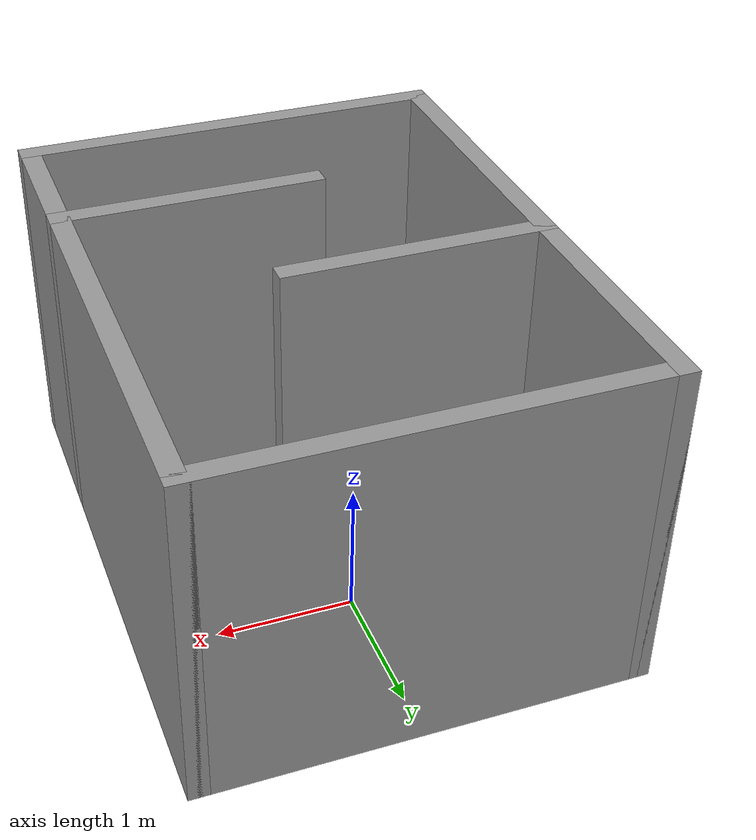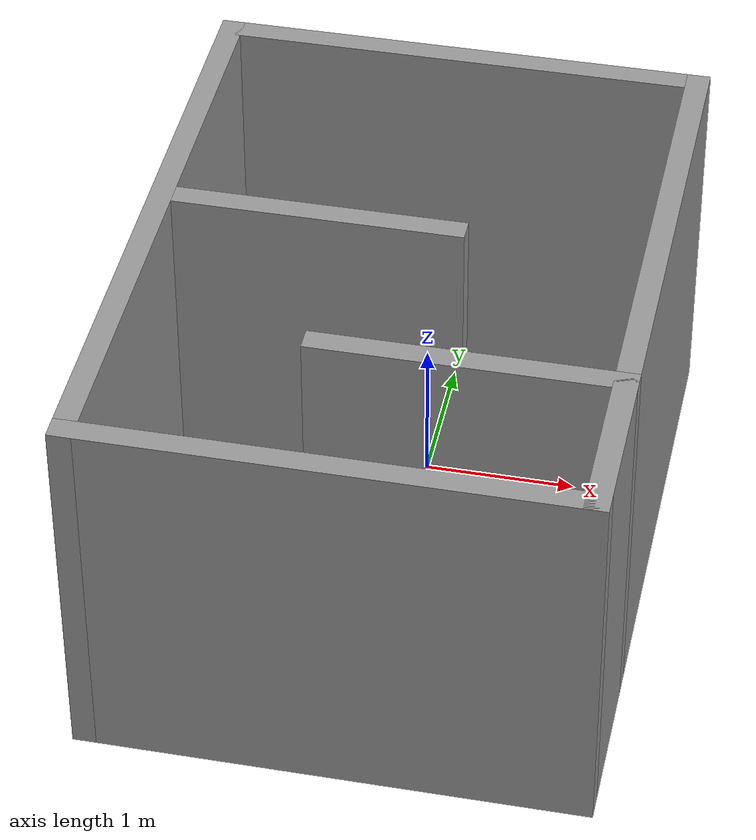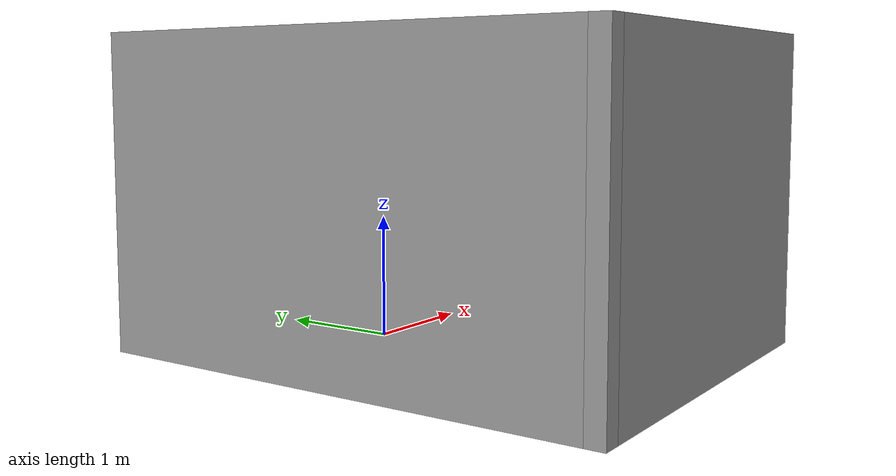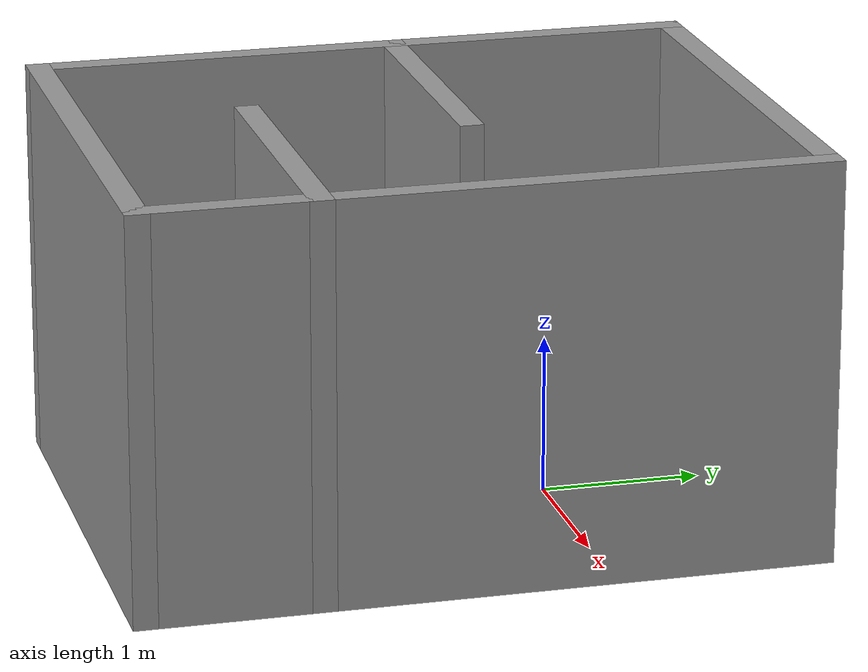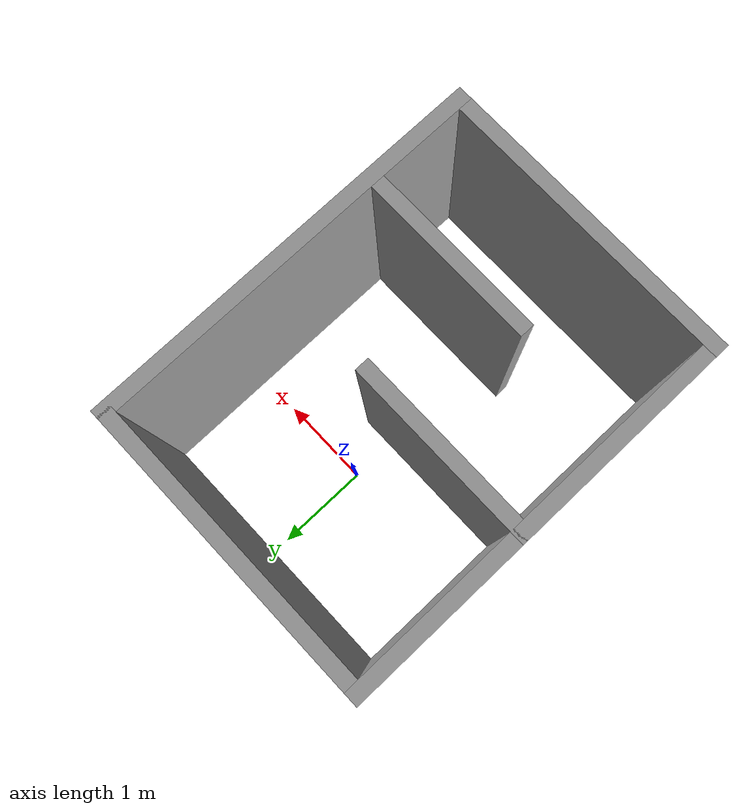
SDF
<?xml version='1.0'?>
<sdf version='1.7'>
  <model name='basic_world'>
    <pose>-0.03 -0.78 0 0 -0 0</pose>
    <link name='Wall_28'>
      <collision name='Wall_28_Collision'>
        <geometry>
          <box>
            <size>3.25 0.15 2.5</size>
          </box>
        </geometry>
        <pose>0 0 1.25 0 -0 0</pose>
      </collision>
      <visual name='Wall_28_Visual'>
        <pose>0 0 1.25 0 -0 0</pose>
        <geometry>
          <box>
            <size>3.25 0.15 2.5</size>
          </box>
        </geometry>
        <material>
          <script>
            <uri>file://media/materials/scripts/gazebo.material</uri>
            <name>Gazebo/Grey</name>
          </script>
          <ambient>1 1 1 1</ambient>
        </material>
        <meta>
          <layer>0</layer>
        </meta>
      </visual>
      <pose>0 2.05 0 0 -0 0</pose>
    </link>
    <link name='Wall_29'>
      <collision name='Wall_29_Collision'>
        <geometry>
          <box>
            <size>4.25 0.15 2.5</size>
          </box>
        </geometry>
        <pose>0 0 1.25 0 -0 0</pose>
      </collision>
      <visual name='Wall_29_Visual'>
        <pose>0 0 1.25 0 -0 0</pose>
        <geometry>
          <box>
            <size>4.25 0.15 2.5</size>
          </box>
        </geometry>
        <material>
          <script>
            <uri>file://media/materials/scripts/gazebo.material</uri>
            <name>Gazebo/Grey</name>
          </script>
          <ambient>1 1 1 1</ambient>
        </material>
        <meta>
          <layer>0</layer>
        </meta>
      </visual>
      <pose>1.55 0 0 0 -0 -1.5708</pose>
    </link>
    <link name='Wall_30'>
      <collision name='Wall_30_Collision'>
        <geometry>
          <box>
            <size>3.25 0.15 2.5</size>
          </box>
        </geometry>
        <pose>0 0 1.25 0 -0 0</pose>
      </collision>
      <visual name='Wall_30_Visual'>
        <pose>0 0 1.25 0 -0 0</pose>
        <geometry>
          <box>
            <size>3.25 0.15 2.5</size>
          </box>
        </geometry>
        <material>
          <script>
            <uri>file://media/materials/scripts/gazebo.material</uri>
            <name>Gazebo/Grey</name>
          </script>
          <ambient>1 1 1 1</ambient>
        </material>
        <meta>
          <layer>0</layer>
        </meta>
      </visual>
      <pose>0 -2.05 0 0 -0 3.14159</pose>
    </link>
    <link name='Wall_31'>
      <collision name='Wall_31_Collision'>
        <geometry>
          <box>
            <size>4.25 0.15 2.5</size>
          </box>
        </geometry>
        <pose>0 0 1.25 0 -0 0</pose>
      </collision>
      <visual name='Wall_31_Visual'>
        <pose>0 0 1.25 0 -0 0</pose>
        <geometry>
          <box>
            <size>4.25 0.15 2.5</size>
          </box>
        </geometry>
        <material>
          <script>
            <uri>file://media/materials/scripts/gazebo.material</uri>
            <name>Gazebo/Grey</name>
          </script>
          <ambient>1 1 1 1</ambient>
        </material>
        <meta>
          <layer>0</layer>
        </meta>
      </visual>
      <pose>-1.55 0 0 0 -0 1.5708</pose>
    </link>
    <link name='Wall_34'>
      <collision name='Wall_34_Collision'>
        <geometry>
          <box>
            <size>2 0.15 2.5</size>
          </box>
        </geometry>
        <pose>0 0 1.25 0 -0 0</pose>
      </collision>
      <visual name='Wall_34_Visual'>
        <pose>0 0 1.25 0 -0 0</pose>
        <geometry>
          <box>
            <size>2 0.15 2.5</size>
          </box>
        </geometry>
        <material>
          <script>
            <uri>file://media/materials/scripts/gazebo.material</uri>
            <name>Gazebo/Grey</name>
          </script>
          <ambient>1 1 1 1</ambient>
        </material>
        <meta>
          <layer>0</layer>
        </meta>
      </visual>
      <pose>-0.625 0.22 0 0 -0 0</pose>
    </link>
    <link name='Wall_36'>
      <collision name='Wall_36_Collision'>
        <geometry>
          <box>
            <size>2 0.15 2.5</size>
          </box>
        </geometry>
        <pose>0 0 1.25 0 -0 0</pose>
      </collision>
      <visual name='Wall_36_Visual'>
        <pose>0 0 1.25 0 -0 0</pose>
        <geometry>
          <box>
            <size>2 0.15 2.5</size>
          </box>
        </geometry>
        <material>
          <script>
            <uri>file://media/materials/scripts/gazebo.material</uri>
            <name>Gazebo/Grey</name>
          </script>
          <ambient>1 1 1 1</ambient>
        </material>
        <meta>
          <layer>0</layer>
        </meta>
      </visual>
      <pose>0.625 -0.99 0 0 -0 3.14159</pose>
    </link>
    <static>1</static>
  </model>
</sdf>
